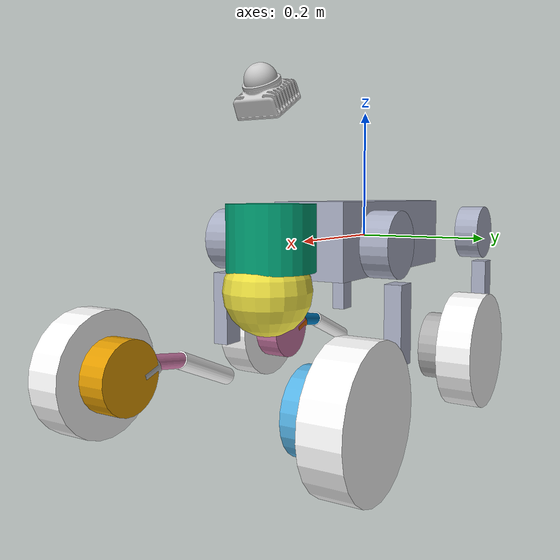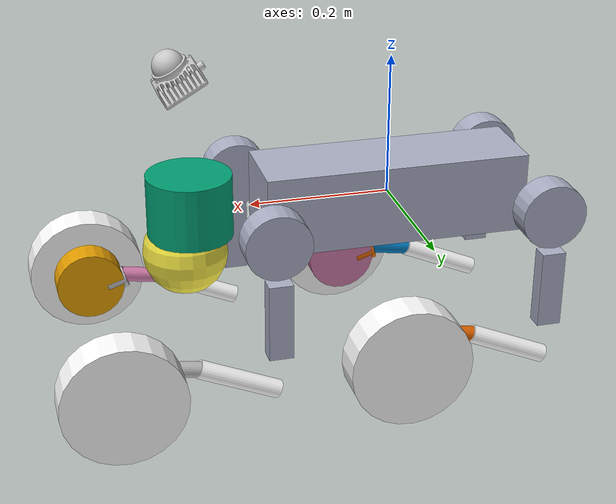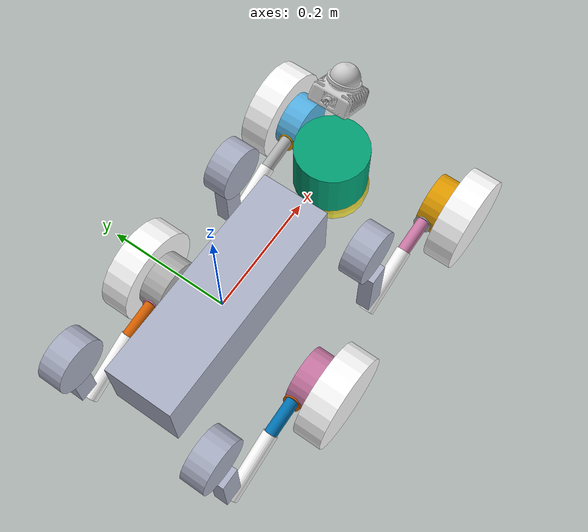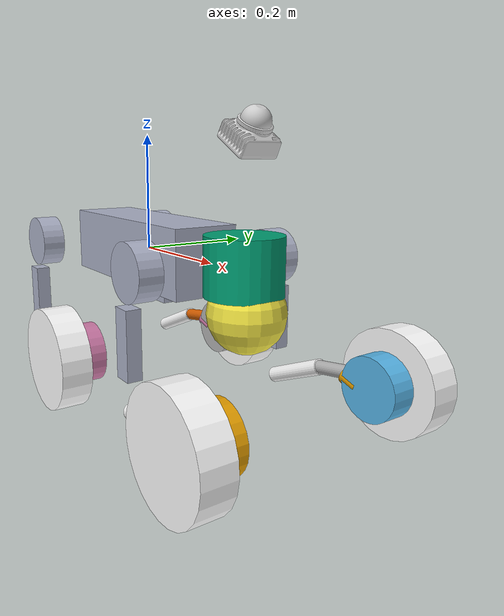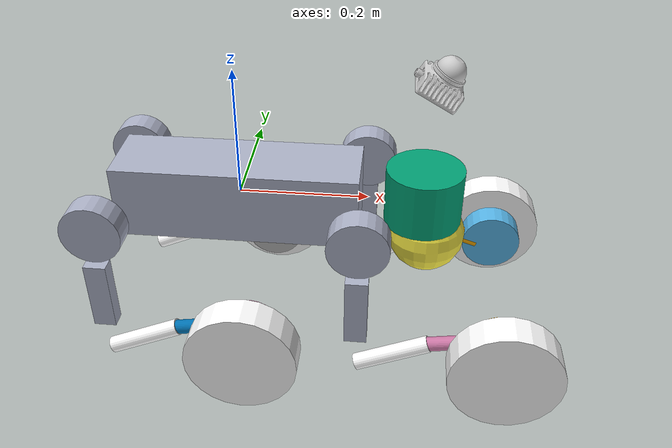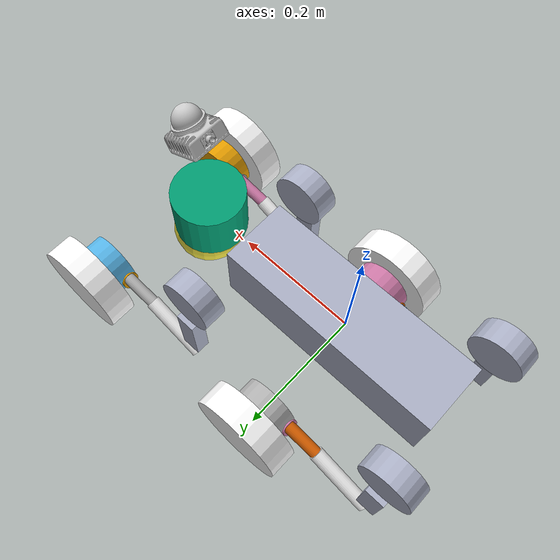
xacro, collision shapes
<?xml version="1.0"?>
<robot xmlns:xacro="http://ros.org/wiki/xacro" name="go2w">
  <!-- Gloabal parameters -->
  <xacro:include filename="$(find go2w_description)/urdf/const.xacro"/>

  <xacro:property name="mesh_prefix" value="file://$(find go2w_description)/meshes" />

  <xacro:macro name="leg" params="prefix front left">

    <xacro:if value="${(front == True)}">
        <xacro:property name="front_sign" value=" 1" />
    </xacro:if>
    <xacro:if value="${(front == False)}">
        <xacro:property name="front_sign" value="-1" />
    </xacro:if>
    <xacro:if value="${(left == True)}">
        <xacro:property name="left_sign" value=" 1" />
    </xacro:if>
    <xacro:if value="${(left == False)}">
        <xacro:property name="left_sign" value="-1" />
    </xacro:if>

    <!-- Hip -->
    <link name="${prefix}_hip">
      <inertial>
        <origin xyz="${hip_com_x*front_sign} ${hip_com_y*left_sign} ${hip_com_z}" rpy="0 0 0" />
        <mass value="${hip_mass}" />
        <inertia ixx="${hip_ixx}" ixy="${hip_ixy*left_sign*front_sign}" ixz="${hip_ixz*front_sign}" iyy="${hip_iyy}" iyz="${hip_iyz*left_sign}" izz="${hip_izz}" />
      </inertial>
      <visual>
        <xacro:if value="${(left == True) and (front == True)}">
            <origin rpy="0 0 0" xyz="0 0 0"/>
        </xacro:if>
        <xacro:if value="${(left == False) and (front == True)}">
            <origin rpy="${PI} 0 0" xyz="0 0 0"/>
        </xacro:if>
        <xacro:if value="${(left == True) and (front == False)}">
            <origin rpy="0 ${PI} 0" xyz="0 0 0"/>
        </xacro:if>
        <xacro:if value="${(left == False) and (front == False)}">
            <origin rpy="${PI} ${PI} 0" xyz="0 0 0"/>
        </xacro:if>
        <geometry>
          <mesh filename="${mesh_prefix}/hip.dae" />
        </geometry>
        <material name="深色橡胶_001-effect"><color rgba="0.6717055 0.6924257 0.7742702 1" /></material><material name="Material-effect"><color rgba="0.9 0.95 0.95 1" /></material>
      </visual>
      <collision>
        <origin rpy="${PI/2.0} 0 0" xyz="0 ${hip_offset_col_y*left_sign} 0" />
        <geometry>
            <cylinder length="${hip_length}" radius="${hip_radius}" />
        </geometry>
      </collision>
    </link>
    <joint name="${prefix}_hip_joint" type="revolute">
      <origin xyz="${hip_offset_x*front_sign} ${hip_offset_y*left_sign} ${hip_offset_z}" rpy="0 0 0" />
      <parent link="body" />
      <child link="${prefix}_hip" />
      <axis xyz="1 0 0" />
      <xacro:if value="${(left == True)}">
        <limit effort="${hip_torque_max}" velocity="${hip_velocity_max}" lower="${hip_position_min}" upper="${hip_position_max}"/>
      </xacro:if>
      <xacro:if value="${(left == False)}">
        <limit effort="${hip_torque_max}" velocity="${hip_velocity_max}" lower="${-hip_position_max}" upper="${-hip_position_min}"/>
      </xacro:if>
      <dynamics damping="${hip_damping}" friction="${hip_friction}" />
    </joint>

    <!-- Thigh -->
    <link name="${prefix}_thigh">
      <inertial>
        <origin xyz="${thigh_com_x} ${thigh_com_y*left_sign} ${thigh_com_z}" rpy="0 0 0" />
        <mass value="${thigh_mass}" />
        <inertia ixx="${thigh_ixx}" ixy="${thigh_ixy*left_sign}" ixz="${thigh_ixz}" iyy="${thigh_iyy}" iyz="${thigh_iyz*left_sign}" izz="${thigh_izz}" />
      </inertial>
      <visual>
        <origin xyz="0 0 0" rpy="0 0 0" />
        <geometry>
          <xacro:if value="${left == True}">
              <mesh filename="${mesh_prefix}/thigh.dae" scale="1 1 1"/>
          </xacro:if>
          <xacro:if value="${left == False}">
              <mesh filename="${mesh_prefix}/thigh_mirror.dae" scale="1 1 1"/>
          </xacro:if>
        </geometry>
        <material name="深色橡胶_003-effect"><color rgba="0.6717055 0.6924257 0.7742702 1" /></material><material name="Material_009-effect"><color rgba="0.9 0.95 0.95 1" /></material>
      </visual>
      <collision>
        <origin rpy="0 ${PI/2.0} 0" xyz="0 0 ${thigh_offset_col_z}" />
        <geometry>
          <box size="${thigh_length} ${thigh_width} ${thigh_height}" />
        </geometry>
      </collision>
    </link>
    <joint name="${prefix}_thigh_joint" type="revolute">
      <origin xyz="${thigh_offset_x} ${thigh_offset_y*left_sign} ${thigh_offset_z}" rpy="0 0 0" />
      <parent link="${prefix}_hip" />
      <child link="${prefix}_thigh" />
      <axis xyz="0 1 0" />
      <limit effort="${thigh_torque_max}" velocity="${thigh_velocity_max}" lower="${thigh_position_min}" upper="${thigh_position_max}" />
      <dynamics damping="${thigh_damping}" friction="${thigh_friction}" />
    </joint>

    <!-- Calf -->
    <link name="${prefix}_calf">
      <inertial>
        <origin xyz="${calf_com_x} ${calf_com_y*left_sign} ${calf_com_z}" rpy="0 0 0" />
        <mass value="${calf_mass}" />
        <inertia ixx="${calf_ixx}" ixy="${calf_ixy*left_sign}" ixz="${calf_ixz}" iyy="${calf_iyy}" iyz="${calf_iyz*left_sign}" izz="${calf_izz}" />
      </inertial>
      <visual>
        <origin xyz="0 0 0" rpy="0 0 0" />
        <geometry>
            <xacro:if value="${left == True}">
              <mesh filename="${mesh_prefix}/calf.stl" />
            </xacro:if>
            <xacro:if value="${left == False}">
              <mesh filename="${mesh_prefix}/calf_mirror.stl" />
            </xacro:if>
        </geometry>
        <material name="">
          <color rgba="1 1 1 1" />
        </material>
      </visual>
      <collision>
        <origin rpy="0 ${calf_rotation_col_p} 0" xyz="${calf_offset_col_x} 0 ${calf_offset_col_z}" />
        <geometry>
          <cylinder length="${calf_length}" radius="${calf_radius}" />
        </geometry>
      </collision>
    </link>
    <joint name="${prefix}_calf_joint" type="revolute">
      <origin xyz="${calf_offset_x} ${calf_offset_y*left_sign} ${calf_offset_z}" rpy="0 0 0" />
      <parent link="${prefix}_thigh" />
      <child link="${prefix}_calf" />
      <axis xyz="0 1 0" />
      <limit lower="${calf_position_min}" upper="${calf_position_max}" effort="${calf_torque_max}" velocity="${calf_velocity_max}" />
      <dynamics damping="${calf_damping}" friction="${calf_friction}" />
    </joint>

    <!-- Calf lower -->
    <link name="${prefix}_calflower">
      <collision>
        <origin rpy="0 0 0" xyz="0 0 0" />
        <geometry>
            <cylinder length="${calf_lower_length}" radius="${calf_lower_radius}" />
        </geometry>
      </collision>
    </link>
    <joint name="${prefix}_calflower_joint" type="fixed">
      <origin xyz="${calf_lower_offset_x} ${calf_lower_offset_y*left_sign} ${calf_lower_offset_z}" rpy="0 ${calf_lower_rotation_p} 0" />
      <parent link="${prefix}_calf" />
      <child link="${prefix}_calflower" />
      <axis xyz="0 0 0" />
    </joint>

    <!-- Calf flower 1 -->
    <link name="${prefix}_calflower1">
      <collision>
        <origin rpy="0 0 0" xyz="0 0 0" />
        <geometry>
            <cylinder length="${calf_lower1_length}" radius="${calf_lower1_radius}" />
        </geometry>
      </collision>
    </link>
    <joint name="${prefix}_calflower1_joint" type="fixed">
      <origin xyz="${calf_lower1_offset_x} ${calf_lower1_offset_y*left_sign} ${calf_lower1_offset_z}" rpy="${calf_lower1_rotation_p}" />
      <parent link="${prefix}_calflower" />
      <child link="${prefix}_calflower1" />
      <axis xyz="0 0 0" />
    </joint>

    <!-- Foot motor -->
    <link name="${prefix}_foot_motor">
      <inertial>
        <origin xyz="${foot_motor_com_x} ${foot_motor_com_y} ${foot_motor_com_z}" rpy="0 0 0" />
        <mass value="${foot_motor_mass}" />
        <inertia ixx="${foot_motor_ixx}" ixy="${foot_motor_ixy*left_sign}" ixz="${foot_motor_ixz}" iyy="${foot_motor_iyy}" iyz="${foot_motor_iyz*left_sign}" izz="${foot_motor_izz}" />
      </inertial>
      <collision>
        <origin rpy="${PI/2.0} 0 0" xyz="0 0 0" />
        <geometry>
            <cylinder length="${foot_motor_length}" radius="${foot_motor_radius}" />
        </geometry>
      </collision>
    </link>
    <joint name="${prefix}_foot_motor_joint" type="fixed">
      <origin xyz="${foot_motor_offset_x} ${foot_motor_offset_y*left_sign} ${foot_motor_offset_z}" rpy="0 0.0 0" />
      <parent link="${prefix}_calf" />
      <child link="${prefix}_foot_motor" />
      <axis xyz="0 0 0" />
    </joint>

    <!-- Foot -->
    <link name="${prefix}_foot">
      <inertial>
        <origin xyz="${foot_com_x} ${foot_com_y*left_sign} ${foot_com_z}" rpy="0 0 0" />
        <mass value="${foot_mass}" />
        <inertia ixx="${foot_ixx}" ixy="${foot_ixy}" ixz="${foot_ixz}" iyy="${foot_iyy}" iyz="${foot_iyz}" izz="${foot_izz}" />
      </inertial>
      <visual>
        <origin xyz="0 0 0" rpy="0 0 0" />
        <geometry>
            <xacro:if value="${left == True}">
            <mesh filename="${mesh_prefix}/left_wheel.dae" />
            </xacro:if>
            <xacro:if value="${left == False}">
            <mesh filename="${mesh_prefix}/right_wheel.dae" />
            </xacro:if>
        </geometry>
        <material name="">
          <color rgba="1 1 1 1" />
        </material>
      </visual>
      <collision>
        <origin rpy="${PI/2.0} 0 0" xyz="0 ${foot_offset_col_y*left_sign} 0" />
        <geometry>
          <cylinder length="${foot_length}" radius="${foot_radius}" />
        </geometry>
      </collision>
    </link>
    <joint name="${prefix}_foot_joint" type="continuous">
      <origin xyz="${foot_offset_x} ${foot_offset_y*left_sign} ${foot_offset_z}" rpy="0 0 0" />
      <parent link="${prefix}_calf" />
      <child link="${prefix}_foot" />
      <axis xyz="0 1 0" />
      <limit effort="${foot_torque_max}" velocity="${foot_velocity_max}" />
    </joint>
    <gazebo reference="${prefix}_foot">
        <mu1>3</mu1>
        <mu2>3</mu2>
    </gazebo>

  </xacro:macro>

  <!-- Base-->
  <link name="base"/>

  <!-- Body -->
  <link name="body">
    <inertial>
      <origin xyz="${body_com_x} ${body_com_y} ${body_com_z}" rpy="0 0 0" />
      <mass value="${body_mass}" />
      <inertia ixx="${body_ixx}" ixy="${body_ixy}" ixz="${body_ixz}" iyy="${body_iyy}" iyz="${body_iyz}" izz="${body_izz}" />
    </inertial>
    <visual>
      <origin xyz="0 0 0" rpy="0 0 0" />
      <geometry>
        <mesh filename="${mesh_prefix}/base.dae" />
      </geometry>
      <material name="深色橡胶_001-effect"><color rgba="0.6717055 0.6924257 0.7742702 1" /></material><material name="白色logo_001-effect"><color rgba="1 1 1 1" /></material><material name="黑色贴纸_007-effect"><color rgba="0.009018 0.009018 0.009018 1" /></material><material name="黑色金属_007-effect"><color rgba="0.01341 0.01341 0.01341 1" /></material><material name="黑色塑料_003-effect"><color rgba="0.023455 0.023455 0.023455 1" /></material></visual>
    <collision>
      <origin rpy="0 0 0" xyz="0 0 0" />
      <geometry>
        <box size="${body_length} ${body_width} ${body_width}" />
      </geometry>
    </collision>
  </link>
  <joint name="body_joint" type="fixed">
    <parent link="base" />
    <child link="body" />
  </joint>

  <!-- Head Upper-->
  <link name="Head_upper">
    <inertial>
      <origin xyz="${head_upper_com_x} ${head_upper_com_y} ${head_upper_com_z}" rpy="0 0 0" />
      <mass value="${head_upper_mass}" />
      <inertia ixx="${head_upper_ixx}" ixy="${head_upper_ixy}" ixz="${head_upper_ixz}" iyy="${head_upper_iyy}" iyz="${head_upper_iyz}" izz="${head_upper_izz}" />
    </inertial>
    <collision>
      <origin xyz="0 0 0" rpy="0 0 0" />
      <geometry>
        <cylinder radius="${head_upper_radius}" length="${head_upper_length}" />
      </geometry>
    </collision>
  </link>
  <joint name="Head_upper_joint" type="fixed" dont_collapse="true">
    <origin xyz="0.285 0 0.01" rpy="0 0 0" />
    <parent link="body" />
    <child link="Head_upper" />
    <axis xyz="0 0 0" />
  </joint>

  <!-- Head Lower -->
  <link name="Head_lower">
    <inertial>
      <origin xyz="${head_lower_com_x} ${head_lower_com_y} ${head_lower_com_z}" rpy="0 0 0" />
      <mass value="${head_lower_mass}" />
      <inertia ixx="${head_lower_ixx}" ixy="${head_lower_ixy}" ixz="${head_lower_ixz}" iyy="${head_lower_iyy}" iyz="${head_lower_iyz}" izz="${head_lower_izz}" />
    </inertial>
    <collision>
      <origin xyz="0 0 0" rpy="0 0 0" />
      <geometry>
        <sphere radius="${head_lower_radius}" />
      </geometry>
    </collision>
  </link>
  <joint name="Head_lower_joint" type="fixed" dont_collapse="true">
    <origin xyz="0.008 0 -0.07" rpy="0 0 0" />
    <parent link="Head_upper" />
    <child link="Head_lower" />
    <axis xyz="0 0 0" />
  </joint>

  <xacro:leg prefix="FL" front="True" left="True"/>
  <xacro:leg prefix="FR" front="True" left="False"/>
  <xacro:leg prefix="RL" front="False" left="True"/>
  <xacro:leg prefix="RR" front="False" left="False"/>

  <!-- IMU -->
  <link name="imu">
    <inertial>
      <origin xyz="0 0 0" rpy="0 0 0" />
      <mass value="0" />
      <inertia ixx="0" ixy="0" ixz="0" iyy="0" iyz="0" izz="0" />
    </inertial>
  </link>

  <joint name="imu_joint" type="fixed">
    <origin xyz="-0.02557 0 0.04232" rpy="0 0 0" />
    <parent link="body" />
    <child link="imu" />
    <axis xyz="0 0 0" />
  </joint>

  <link name="livox_frame">
    <inertial>
      <origin xyz="0 0 0" rpy="0 0 0" />
      <mass value="0.4" />
      <inertia ixx="0.0004" ixy="0" ixz="0" iyy="0.000533" iyz="0" izz="0.000533" />
    </inertial>
    <visual>
      <origin xyz="0 0 0" rpy="0 0 0"/>
      <geometry>
        <mesh filename="${mesh_prefix}/mid-360-scaled.dae"/>
      </geometry>
    </visual>
    <collision>
      <origin xyz="0 0 0" rpy="0 0 0"/>
      <geometry>
        <mesh filename="${mesh_prefix}/mid-360-scaled.dae"/>
      </geometry>
    </collision>
  </link>

  <joint name="livox_frame_joint" type="fixed">
    <parent link="body"/>
    <child link="livox_frame"/>
    <origin xyz="0.3 0.0 0.20" rpy="0 -0.5236 ${PI}"/>
  </joint>

  <xacro:macro name="joint_ros2_control_gz" params="prefix">
    <joint name="${prefix}_hip_joint">
      <command_interface name="effort">
        <param name="min">${-hip_torque_max}</param>
        <param name="max">${hip_torque_max}</param>
      </command_interface>
      <state_interface name="position">
        <param name="initial_value">${hip_init_position}</param>
      </state_interface>
      <state_interface name="velocity"/>
      <state_interface name="effort"/>
    </joint>

    <joint name="${prefix}_thigh_joint">
      <command_interface name="effort">
        <param name="min">${-thigh_torque_max}</param>
        <param name="max">${thigh_torque_max}</param>
      </command_interface>
      <state_interface name="position">
        <param name="initial_value">${thigh_init_position}</param>
      </state_interface>
      <state_interface name="velocity"/>
      <state_interface name="effort"/>
    </joint>

    <joint name="${prefix}_calf_joint">
      <command_interface name="effort">
        <param name="min">${-calf_torque_max}</param>
        <param name="max">${calf_torque_max}</param>
      </command_interface>
      <state_interface name="position">
        <param name="initial_value">${calf_init_position}</param>
      </state_interface>
      <state_interface name="velocity"/>
      <state_interface name="effort"/>
    </joint>

    <joint name="${prefix}_foot_joint">
      <command_interface name="effort">
        <param name="min">${-foot_torque_max}</param>
        <param name="max">${foot_torque_max}</param>
      </command_interface>
      <command_interface name="velocity">
        <param name="min">${-foot_velocity_max}</param>
        <param name="max">${foot_velocity_max}</param>
      </command_interface>
      <state_interface name="position">
        <param name="initial_value">0.0</param>
      </state_interface>
      <state_interface name="velocity">
        <param name="initial_value">0.0</param>
      </state_interface>
      <state_interface name="effort"/>
    </joint>
  </xacro:macro>

  <ros2_control name="gz_ros2_control" type="system">
    <hardware>
      <plugin>gz_ros2_control/GazeboSimSystem</plugin>
    </hardware>

    <xacro:joint_ros2_control_gz prefix="FL"/>
    <xacro:joint_ros2_control_gz prefix="FR"/>
    <xacro:joint_ros2_control_gz prefix="RL"/>
    <xacro:joint_ros2_control_gz prefix="RR"/>

  </ros2_control>

</robot>

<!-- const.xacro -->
<robot xmlns:xacro="http://www.ros.org/wiki/xacro">

    <!-- Constants for robot dimensions -->
    <xacro:property name="PI" value="3.1415926535897931"/>

    <!-- simplified collision value -->
    <xacro:property name="body_width" value="0.0935"/>
    <xacro:property name="body_length" value="0.3762"/>
    <xacro:property name="body_width" value="0.114"/>

    <xacro:property name="head_upper_radius" value="0.06"/>
    <xacro:property name="head_upper_length" value="0.09"/>
    <xacro:property name="head_lower_radius" value="0.06"/>

    <xacro:property name="hip_offset_col_y" value="0.08"/>
    <xacro:property name="hip_radius" value="0.046"/>
    <xacro:property name="hip_length" value="0.04"/>

    <xacro:property name="thigh_offset_col_z" value="-0.1065"/>
    <xacro:property name="thigh_length" value="0.11"/>
    <xacro:property name="thigh_width" value="0.0245"/>
    <xacro:property name="thigh_height" value="0.034"/>

    <xacro:property name="calf_offset_col_x" value="0.01"/>
    <xacro:property name="calf_offset_col_z" value="-0.06"/>
    <xacro:property name="calf_rotation_col_p" value="-0.2"/>
    <xacro:property name="calf_length" value="0.12"/>
    <xacro:property name="calf_radius" value="0.013"/>

    <xacro:property name="calf_lower_length" value="0.065"/>
    <xacro:property name="calf_lower_radius" value="0.011"/>

    <xacro:property name="calf_lower1_length" value="0.03"/>
    <xacro:property name="calf_lower1_radius" value="0.0155"/>

    <xacro:property name="foot_motor_length" value="0.05"/>
    <xacro:property name="foot_motor_radius" value="0.05"/>

    <xacro:property name="foot_offset_col_y" value="0.05"/>
    <xacro:property name="foot_length" value="0.05"/>
    <xacro:property name="foot_radius" value="0.085"/>

    <!-- offset of link locations -->
    <xacro:property name="hip_offset_x" value="0.1934"/>
    <xacro:property name="hip_offset_y" value="0.0465"/>
    <xacro:property name="hip_offset_z" value="0.0"/>

    <xacro:property name="thigh_offset_x" value="0"/>
    <xacro:property name="thigh_offset_y" value="0.0955"/>
    <xacro:property name="thigh_offset_z" value="0.0"/>

    <xacro:property name="calf_offset_x" value="0.0"/>
    <xacro:property name="calf_offset_y" value="0.0"/>
    <xacro:property name="calf_offset_z" value="-0.213"/>

    <xacro:property name="calf_lower_offset_x" value="0.020"/>
    <xacro:property name="calf_lower_offset_y" value="0.0"/>
    <xacro:property name="calf_lower_offset_z" value="-0.148"/>
    <xacro:property name="calf_lower_rotation_p" value="0.05"/>

    <xacro:property name="calf_lower1_offset_x" value="-0.01"/>
    <xacro:property name="calf_lower1_offset_y" value="0.0"/>
    <xacro:property name="calf_lower1_offset_z" value="-0.04"/>
    <xacro:property name="calf_lower1_rotation_p" value="0 0.48 0"/>

    <xacro:property name="foot_motor_offset_x" value="-0.00"/>
    <xacro:property name="foot_motor_offset_y" value="0.01"/>
    <xacro:property name="foot_motor_offset_z" value="-0.2264"/>

    <xacro:property name="foot_offset_x" value="0.0"/>
    <xacro:property name="foot_offset_y" value="0.0"/>
    <xacro:property name="foot_offset_z" value="-0.2264"/>

    <!-- joint limits -->
    <xacro:property name="hip_position_max" value="1.0472"/>
    <xacro:property name="hip_position_min" value="-1.0472"/>
    <xacro:property name="hip_velocity_max" value="30.1"/>
    <xacro:property name="hip_torque_max" value="23.7"/>
    <xacro:property name="hip_damping" value="0.1"/>
    <xacro:property name="hip_friction" value="0.2"/>

    <xacro:property name="thigh_position_max" value="3.4907"/>
    <xacro:property name="thigh_position_min" value="-1.5708"/>
    <xacro:property name="thigh_velocity_max" value="30.1"/>
    <xacro:property name="thigh_torque_max" value="23.7"/>
    <xacro:property name="thigh_damping" value="0.1"/>
    <xacro:property name="thigh_friction" value="0.2"/>

    <xacro:property name="calf_position_max" value="-0.83776"/>
    <xacro:property name="calf_position_min" value="-2.7227"/>
    <xacro:property name="calf_velocity_max" value="20.06"/>
    <xacro:property name="calf_torque_max" value="35.55"/>
    <xacro:property name="calf_damping" value="0.1"/>
    <xacro:property name="calf_friction" value="0.2"/>

    <xacro:property name="foot_velocity_max" value="30.1"/>
    <xacro:property name="foot_torque_max" value="23.7"/>

    <!-- joint initial positions -->
    <xacro:property name="hip_init_position" value="0.0"/>
    <xacro:property name="thigh_init_position" value="1.0143535137176514"/>
    <xacro:property name="calf_init_position" value="-2.0287070274353027"/>

    <!-- dynamics inertial value -->
    <!-- body -->
    <xacro:property name="body_mass" value="6.921"/>
    <xacro:property name="body_com_x" value="0.021112"/>
    <xacro:property name="body_com_y" value="0.00"/>
    <xacro:property name="body_com_z" value="-0.005366"/>
    <xacro:property name="body_ixx" value="0.02448"/>
    <xacro:property name="body_ixy" value="0.00012166"/>
    <xacro:property name="body_ixz" value="0.0014849"/>
    <xacro:property name="body_iyy" value="0.098077"/>
    <xacro:property name="body_iyz" value="-3.12E-05"/>
    <xacro:property name="body_izz" value="0.107"/>

    <!-- head upper -->
    <xacro:property name="head_upper_mass" value="0.001"/>
    <xacro:property name="head_upper_com_x" value="0.0"/>
    <xacro:property name="head_upper_com_y" value="0.0"/>
    <xacro:property name="head_upper_com_z" value="0.0"/>
    <xacro:property name="head_upper_ixx" value="9.6e-06"/>
    <xacro:property name="head_upper_ixy" value="0.0"/>
    <xacro:property name="head_upper_ixz" value="0.0"/>
    <xacro:property name="head_upper_iyy" value="9.6e-06"/>
    <xacro:property name="head_upper_iyz" value="0.0"/>
    <xacro:property name="head_upper_izz" value="9.6e-06"/>

    <!-- head lower -->
    <xacro:property name="head_lower_mass" value="0.001"/>
    <xacro:property name="head_lower_com_x" value="0.0"/>
    <xacro:property name="head_lower_com_y" value="0.0"/>
    <xacro:property name="head_lower_com_z" value="0.0"/>
    <xacro:property name="head_lower_ixx" value="9.6e-06"/>
    <xacro:property name="head_lower_ixy" value="0.0"/>
    <xacro:property name="head_lower_ixz" value="0.0"/>
    <xacro:property name="head_lower_iyy" value="9.6e-06"/>
    <xacro:property name="head_lower_iyz" value="0.0"/>
    <xacro:property name="head_lower_izz" value="9.6e-06"/>

    <!-- hip (left front) -->
    <xacro:property name="hip_mass" value="0.678"/>
    <xacro:property name="hip_com_x" value="-0.0054"/>
    <xacro:property name="hip_com_y" value="0.00194"/>
    <xacro:property name="hip_com_z" value="-0.000105"/>
    <xacro:property name="hip_ixx" value="0.00048"/>
    <xacro:property name="hip_ixy" value="-3.01E-06"/>
    <xacro:property name="hip_ixz" value="1.11E-06"/>
    <xacro:property name="hip_iyy" value="0.000884"/>
    <xacro:property name="hip_iyz" value="-1.42E-06"/>
    <xacro:property name="hip_izz" value="0.000596"/>

    <!-- thigh -->
    <xacro:property name="thigh_mass" value="1.152"/>
    <xacro:property name="thigh_com_x" value="-0.00374"/>
    <xacro:property name="thigh_com_y" value="-0.0223"/>
    <xacro:property name="thigh_com_z" value="-0.0327"/>
    <xacro:property name="thigh_ixx" value="0.00584"/>
    <xacro:property name="thigh_ixy" value="8.72E-05"/>
    <xacro:property name="thigh_ixz" value="-0.000289"/>
    <xacro:property name="thigh_iyy" value="0.0058"/>
    <xacro:property name="thigh_iyz" value="0.000808"/>
    <xacro:property name="thigh_izz" value="0.00103"/>

    <!-- calf -->
    <xacro:property name="calf_mass" value="0.154"/>
    <xacro:property name="calf_com_x" value="0.00548"/>
    <xacro:property name="calf_com_y" value="-0.000975"/>
    <xacro:property name="calf_com_z" value="-0.115"/>
    <xacro:property name="calf_ixx" value="0.00108"/>
    <xacro:property name="calf_ixy" value="3.4E-07"/>
    <xacro:property name="calf_ixz" value="1.72E-05"/>
    <xacro:property name="calf_iyy" value="0.0011"/>
    <xacro:property name="calf_iyz" value="8.28E-06"/>
    <xacro:property name="calf_izz" value="3.29E-05"/>

    <!-- foot motor -->
    <xacro:property name="foot_motor_mass" value="0.646"/>
    <xacro:property name="foot_motor_com_x" value="0.0"/>
    <xacro:property name="foot_motor_com_y" value="0.0"/>
    <xacro:property name="foot_motor_com_z" value="0.0"/>
    <xacro:property name="foot_motor_ixx" value="0.001"/>
    <xacro:property name="foot_motor_ixy" value="0.0"/>
    <xacro:property name="foot_motor_ixz" value="0.0"/>
    <xacro:property name="foot_motor_iyy" value="0.0016"/>
    <xacro:property name="foot_motor_iyz" value="0.0"/>
    <xacro:property name="foot_motor_izz" value="0.001"/>

    <!-- foot -->
    <xacro:property name="foot_mass" value="0.520"/>
    <xacro:property name="foot_com_x" value="0.0"/>
    <xacro:property name="foot_com_y" value="0.06"/>
    <xacro:property name="foot_com_z" value="0.0"/>
    <xacro:property name="foot_ixx" value="0.0007"/>
    <xacro:property name="foot_ixy" value="0.0"/>
    <xacro:property name="foot_ixz" value="0.0"/>
    <xacro:property name="foot_iyy" value="0.0012"/>
    <xacro:property name="foot_iyz" value="0.0"/>
    <xacro:property name="foot_izz" value="0.0007"/>

</robot>
